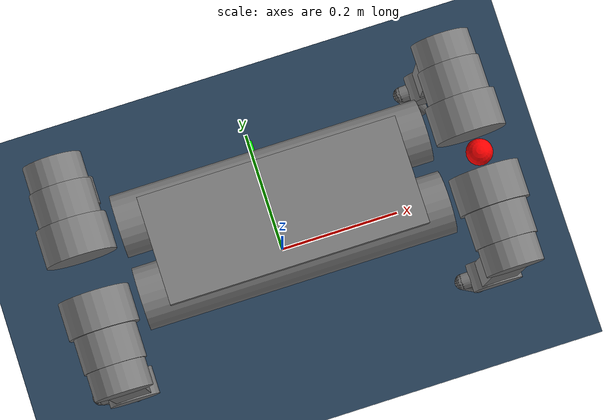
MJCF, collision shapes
<mujoco model="belt scene">
  <compiler angle="radian" meshdir="assets/"/>
  <option impratio="100" integrator="implicitfast" cone="elliptic"/>
  <size nkey="1"/>
  <visual>
    <global azimuth="-130" elevation="-20"/>
    <headlight ambient="0.3 0.3 0.3" diffuse="0.6 0.6 0.6" specular="0 0 0"/>
    <rgba haze="0.15 0.25 0.35 1"/>
  </visual>
  <statistic extent="0.8" center="0 0 0.1"/>
  <default class="main">
    <default class="belt">
      <joint actuatorfrcrange="-100 100" armature="0.0023" damping="2" frictionloss="0.2"/>
      <geom condim="1" friction="0.6" margin="0.001"/>
      <default class="abad">
        <joint range="-1.0472 1.0472" damping="1"/>
        <general ctrlrange="-45 45"/>
      </default>
      <default class="hip_right">
        <joint range="-3.14159 3.14159"/>
        <general ctrlrange="-45 45"/>
      </default>
      <default class="hip_left">
        <joint range="-3.14159 3.14159"/>
        <general ctrlrange="-45 45"/>
      </default>
      <default class="knee_right">
        <joint range="-2.89025 0"/>
        <general ctrlrange="-80 80" forcerange="-80 80"/>
      </default>
      <default class="knee_left">
        <joint range="-2.89025 0"/>
        <general ctrlrange="-80 80" forcerange="-80 80"/>
      </default>
      <default class="visual">
        <geom type="mesh" contype="0" conaffinity="0" group="2"/>
      </default>
      <default class="collision">
        <geom type="capsule" group="3"/>
        <default class="foot">
          <geom size="0.0224 0 0" type="sphere" condim="6" priority="1" friction="0.8 0.02 0.01" solimp="0.015 1 0.031"/>
        </default>
        <default class="hip_front_left1">
          <geom size="0.053 0.028 0" type="cylinder"/>
        </default>
        <default class="hip_front_left2">
          <geom size="0.047 0.0264 0" type="cylinder"/>
        </default>
        <default class="hip_front_left3">
          <geom size="0.044 0.022 0" type="cylinder"/>
        </default>
        <default class="hip_front_right1">
          <geom size="0.053 0.028 0" type="cylinder"/>
        </default>
        <default class="hip_front_right2">
          <geom size="0.047 0.0264 0" type="cylinder"/>
        </default>
        <default class="hip_front_right3">
          <geom size="0.044 0.022 0" type="cylinder"/>
        </default>
        <default class="hip_rear_left1">
          <geom size="0.053 0.028 0" type="cylinder"/>
        </default>
        <default class="hip_rear_left2">
          <geom size="0.047 0.0264 0" type="cylinder"/>
        </default>
        <default class="hip_rear_left3">
          <geom size="0.044 0.022 0" type="cylinder"/>
        </default>
        <default class="hip_rear_right1">
          <geom size="0.053 0.028 0" type="cylinder"/>
        </default>
        <default class="hip_rear_right2">
          <geom size="0.047 0.0264 0" type="cylinder"/>
        </default>
        <default class="hip_rear_right3">
          <geom size="0.044 0.022 0" type="cylinder"/>
        </default>
        <default class="thigh_1">
          <geom size="0.028 0.0195 0.13475" type="box"/>
        </default>
        <default class="thigh_2">
          <geom size="0.04 0.022 0" type="cylinder"/>
        </default>
        <default class="calf_1">
          <geom size="0.0125 0 0"/>
        </default>
        <default class="calf_2">
          <geom size="0.0125 0 0"/>
        </default>
      </default>
    </default>
  </default>
  <asset>
    <texture type="skybox" builtin="gradient" rgb1="0.3 0.5 0.7" rgb2="0 0 0" width="512" height="3072"/>
    <texture type="2d" name="groundplane" builtin="checker" mark="edge" rgb1="0.2 0.3 0.4" rgb2="0.1 0.2 0.3" markrgb="0.8 0.8 0.8" width="300" height="300"/>
    <material name="dark" rgba="0.1 0.1 0.1 1"/>
    <material name="groundplane" texture="groundplane" texuniform="true" texrepeat="5 5" reflectance="0.2"/>
    <mesh name="base_link" class="belt" file="base_link.STL"/>
    <mesh name="fl_abad_link" class="belt" file="fl_abad_link.STL"/>
    <mesh name="fl_hip_link" class="belt" file="fl_hip_link.STL"/>
    <mesh name="fl_knee_link" class="belt" file="fl_knee_link.STL"/>
    <mesh name="fr_abad_link" class="belt" file="fr_abad_link.STL"/>
    <mesh name="fr_hip_link" class="belt" file="fr_hip_link.STL"/>
    <mesh name="fr_knee_link" class="belt" file="fr_knee_link.STL"/>
    <mesh name="rl_abad_link" class="belt" file="rl_abad_link.STL"/>
    <mesh name="rl_hip_link" class="belt" file="rl_hip_link.STL"/>
    <mesh name="rl_knee_link" class="belt" file="rl_knee_link.STL"/>
    <mesh name="rr_abad_link" class="belt" file="rr_abad_link.STL"/>
    <mesh name="rr_hip_link" class="belt" file="rr_hip_link.STL"/>
    <mesh name="rr_knee_link" class="belt" file="rr_knee_link.STL"/>
  </asset>
  <worldbody>
    <geom name="floor" size="0 0 0.05" type="plane" material="groundplane"/>
    <light name="spotlight" target="base" pos="0 -1 2" dir="0 0 -1" mode="targetbodycom"/>
    <light pos="0 0 1.5" dir="0 0 -1" directional="true"/>
    <body name="base" childclass="belt" pos="0 0 0.5">
      <inertial pos="0 0 -0.00069" mass="10.3299" diaginertia="0.04311 0.19241 0.21611"/>
      <joint type="free" limited="false" actuatorfrclimited="false" actuatorfrcrange="0 0" armature="0" damping="0" frictionloss="0"/>
      <geom class="visual" rgba="0.847059 0.643137 0.498039 1" mesh="base_link"/>
      <geom class="collision" size="0.194 0.0808 0.056" type="box"/>
      <geom class="collision" size="0.04695 0.2322" pos="0 0.055 0" quat="0.707107 0 0.707107 0" type="cylinder"/>
      <geom class="collision" size="0.04695 0.2322" pos="0 -0.055 0" quat="0.707107 0 0.707107 0" type="cylinder"/>
      <site name="head" pos="0.3 0 0" size="0.02" rgba="1 0 0 1"/>
      <site name="imu" pos="0 0 0"/>
      <camera name="tracking" pos="0 -1 0.8" quat="0.92388 0.382683 0 0" mode="trackcom"/>
      <body name="fr_abad" pos="0.241 -0.055 0">
        <inertial pos="0.052428 -0.025819 7.2618e-08" quat="0.453148 0.54283 -0.453135 0.542827" mass="1.9747" diaginertia="0.0032013 0.00310579 0.00221631"/>
        <joint name="fr_abad_joint" class="abad" pos="0 0 0" axis="1 0 0"/>
        <geom class="visual" rgba="0.152941 0.160784 0.196078 1" mesh="fr_abad_link"/>
        <geom class="hip_front_right1" pos="0.0555 0 0" quat="0.707107 0.707107 0 0"/>
        <geom class="hip_front_right2" pos="0.0555 -0.05455 0" quat="0.707107 0.707107 0 0"/>
        <geom class="hip_front_right3" pos="0.0555 -0.10045 0" quat="0.707107 0.707107 0 0"/>
        <body name="fr_hip" pos="0.0554994 -0.10045 0">
          <inertial pos="-4.7268e-06 -0.0035029 -0.11665" quat="0.707131 0.00128766 -0.0013139 0.70708" mass="1.0489" diaginertia="0.0125462 0.012351 0.000606138"/>
          <joint name="fr_hip_joint" class="hip_right" pos="0 0 0" axis="0 1 0"/>
          <geom class="visual" rgba="0.905882 0.92549 0.937255 1" mesh="fr_hip_link"/>
          <geom class="thigh_1" pos="0 0 -0.13475"/>
          <geom class="thigh_2" pos="0 0 -0.2695" quat="0.707107 0.707107 0 0"/>
          <body name="fr_knee" pos="0 0 -0.2695">
            <inertial pos="-0.0112576 -3.13499e-08 -0.0631957" quat="0.70698 -0.0132108 -0.0132119 0.706987" mass="0.391062" diaginertia="0.00383396 0.00366268 0.000225956"/>
            <joint name="fr_knee_joint" class="knee_right" pos="0 0 0" axis="0 1 0"/>
            <geom class="visual" rgba="0.0588235 0.443137 0.45098 1" mesh="fr_knee_link"/>
            <geom class="calf_1" size="0.0125 0.0260022" pos="-0.02523 0 -0.00629" quat="0.788004 0 0.615669 0"/>
            <geom class="calf_2" size="0.0125 0.125039" pos="-0.02523 0 -0.135047" quat="0.994845 0 -0.101411 0"/>
            <geom name="fr_foot" class="foot" pos="0 0 -0.257515"/>
            <site name="fr_foot_site" pos="0 0 -0.257515" size="0.0224" rgba="0.941176 0.364706 0.368627 1"/>
          </body>
        </body>
      </body>
      <body name="fl_abad" pos="0.241 0.055 0">
        <inertial pos="0.052428 0.025819 -7.2618e-08" quat="0.542827 0.453135 -0.54283 0.453148" mass="1.9747" diaginertia="0.0032013 0.00310579 0.00221631"/>
        <joint name="fl_abad_joint" class="abad" pos="0 0 0" axis="1 0 0"/>
        <geom class="visual" rgba="0.152941 0.160784 0.196078 1" mesh="fl_abad_link"/>
        <geom class="hip_front_left1" pos="0.0555 0 0" quat="0.707107 0.707107 0 0"/>
        <geom class="hip_front_left2" pos="0.0555 0.05455 0" quat="0.707107 0.707107 0 0"/>
        <geom class="hip_front_left3" pos="0.0555 0.10045 0" quat="0.707107 0.707107 0 0"/>
        <body name="fl_hip" pos="0.055499 0.10045 0">
          <inertial pos="4.7257e-06 0.0035029 -0.11665" quat="0.707131 -0.00128767 0.0013139 0.70708" mass="1.0489" diaginertia="0.0125462 0.012351 0.000606138"/>
          <joint name="fl_hip_joint" class="hip_left" pos="0 0 0" axis="0 1 0"/>
          <geom class="visual" rgba="0.905882 0.92549 0.937255 1" mesh="fl_hip_link"/>
          <geom class="thigh_1" pos="0 0 -0.13475"/>
          <geom class="thigh_2" pos="0 0 -0.2695" quat="0.707107 0.707107 0 0"/>
          <body name="fl_knee" pos="0 0 -0.2695">
            <inertial pos="-0.011258 -3.135e-08 -0.063196" quat="0.70698 -0.0132108 -0.0132119 0.706987" mass="0.39106" diaginertia="0.003834 0.0036627 0.000225953"/>
            <joint name="fl_knee_joint" class="knee_left" pos="0 0 0" axis="0 1 0"/>
            <geom class="visual" rgba="0.0588235 0.443137 0.45098 1" mesh="fl_knee_link"/>
            <geom class="calf_1" size="0.0125 0.0260022" pos="-0.02523 0 -0.00629" quat="0.788004 0 0.615669 0"/>
            <geom class="calf_2" size="0.0125 0.125039" pos="-0.02523 0 -0.135047" quat="0.994845 0 -0.101411 0"/>
            <geom name="fl_foot" class="foot" pos="0 0 -0.257515"/>
            <site name="fl_foot_site" pos="0 0 -0.257515" size="0.0224" rgba="0.941176 0.364706 0.368627 1"/>
          </body>
        </body>
      </body>
      <body name="rr_abad" pos="-0.241 -0.055 0">
        <inertial pos="-0.052428 -0.025819 -7.2618e-08" quat="0.54283 0.453148 -0.542827 0.453135" mass="1.9747" diaginertia="0.0032013 0.00310579 0.00221631"/>
        <joint name="rr_abad_joint" class="abad" pos="0 0 0" axis="1 0 0"/>
        <geom class="visual" rgba="0.152941 0.160784 0.196078 1" mesh="rr_abad_link"/>
        <geom class="hip_rear_right1" pos="-0.0555 0 0" quat="0.707107 0.707107 0 0"/>
        <geom class="hip_rear_right2" pos="-0.0555 -0.05455 0" quat="0.707107 0.707107 0 0"/>
        <geom class="hip_rear_right3" pos="-0.0555 -0.10045 0" quat="0.707107 0.707107 0 0"/>
        <body name="rr_hip" pos="-0.055499 -0.10045 0">
          <inertial pos="-4.72682e-06 -0.0035029 -0.116651" quat="0.707131 0.00128766 -0.0013139 0.70708" mass="1.0489" diaginertia="0.0125463 0.0123505 0.000606143"/>
          <joint name="rr_hip_joint" class="hip_right" pos="0 0 0" axis="0 1 0"/>
          <geom class="visual" rgba="0.905882 0.92549 0.937255 1" mesh="rr_hip_link"/>
          <geom class="thigh_1" pos="0 0 -0.13475"/>
          <geom class="thigh_2" pos="0 0 -0.2695" quat="0.707107 0.707107 0 0"/>
          <body name="rr_knee" pos="0 0 -0.2695">
            <inertial pos="-0.011258 -3.135e-08 -0.063196" quat="0.70698 -0.0132108 -0.0132119 0.706987" mass="0.39106" diaginertia="0.003834 0.0036627 0.000225953"/>
            <joint name="rr_knee_joint" class="knee_right" pos="0 0 0" axis="0 1 0"/>
            <geom class="visual" rgba="0.0588235 0.443137 0.45098 1" mesh="rr_knee_link"/>
            <geom class="calf_1" size="0.0125 0.0260022" pos="-0.02523 0 -0.00629" quat="0.788004 0 0.615669 0"/>
            <geom class="calf_2" size="0.0125 0.125039" pos="-0.02523 0 -0.135047" quat="0.994845 0 -0.101411 0"/>
            <geom name="rr_foot" class="foot" pos="0 0 -0.257515"/>
            <site name="rr_foot_site" pos="0 0 -0.257515" size="0.0224" rgba="0.941176 0.364706 0.368627 1"/>
          </body>
        </body>
      </body>
      <body name="rl_abad" pos="-0.241 0.055 0">
        <inertial pos="-0.052428 0.025819 7.2618e-08" quat="0.453135 0.542827 -0.453148 0.54283" mass="1.9747" diaginertia="0.0032013 0.00310579 0.00221631"/>
        <joint name="rl_abad_joint" class="abad" pos="0 0 0" axis="1 0 0"/>
        <geom class="visual" rgba="0.152941 0.160784 0.196078 1" mesh="rl_abad_link"/>
        <geom class="hip_rear_left1" pos="-0.0555 0 0" quat="0.707107 0.707107 0 0"/>
        <geom class="hip_rear_left2" pos="-0.0555 0.05455 0" quat="0.707107 0.707107 0 0"/>
        <geom class="hip_rear_left3" pos="-0.0555 0.10045 0" quat="0.707107 0.707107 0 0"/>
        <body name="rl_hip" pos="-0.055499 0.10045 0">
          <inertial pos="4.7257e-06 0.0035029 -0.11665" quat="0.707131 -0.00128767 0.0013139 0.70708" mass="1.0489" diaginertia="0.0125462 0.012351 0.000606138"/>
          <joint name="rl_hip_joint" class="hip_left" pos="0 0 0" axis="0 1 0"/>
          <geom class="visual" rgba="0.905882 0.92549 0.937255 1" mesh="rl_hip_link"/>
          <geom class="thigh_1" pos="0 0 -0.13475"/>
          <geom class="thigh_2" pos="0 0 -0.2695" quat="0.707107 0.707107 0 0"/>
          <body name="rl_knee" pos="0 0 -0.2695">
            <inertial pos="-0.011258 -3.135e-08 -0.063196" quat="0.70698 -0.0132108 -0.0132119 0.706987" mass="0.39106" diaginertia="0.003834 0.0036627 0.000225953"/>
            <joint name="rl_knee_joint" class="knee_left" pos="0 0 0" axis="0 1 0"/>
            <geom class="visual" rgba="0.0588235 0.443137 0.45098 1" mesh="rl_knee_link"/>
            <geom class="calf_1" size="0.0125 0.0260022" pos="-0.02523 0 -0.00629" quat="0.788004 0 0.615669 0"/>
            <geom class="calf_2" size="0.0125 0.125039" pos="-0.02523 0 -0.135047" quat="0.994845 0 -0.101411 0"/>
            <geom name="rl_foot" class="foot" pos="0 0 -0.257515"/>
            <site name="rl_foot_site" pos="0 0 -0.257515" size="0.0224" rgba="0.941176 0.364706 0.368627 1"/>
          </body>
        </body>
      </body>
    </body>
    <body name="esti_indicator" pos="0 0 0.1" mocap="true">
      <site name="mocap_left_site1" pos="0 0 0.075" size="0.003 0.003 0.1" type="box" rgba="0 0 1 1"/>
      <site name="mocap_left_site2" pos="0 0.075 0" size="0.003 0.1 0.003" type="box" rgba="0 1 0 1"/>
      <site name="mocap_left_site3" pos="0.075 0 0" size="0.1 0.003 0.003" type="box" rgba="1 0 0 1"/>
    </body>
  </worldbody>
  <actuator>
    <general name="FR_ABAD" class="abad" joint="fr_abad_joint"/>
    <general name="FR_HIP" class="hip_right" joint="fr_hip_joint"/>
    <general name="FR_KNEE" class="knee_right" joint="fr_knee_joint"/>
    <general name="FL_ABAD" class="abad" joint="fl_abad_joint"/>
    <general name="FL_HIP" class="hip_left" joint="fl_hip_joint"/>
    <general name="FL_KNEE" class="knee_left" joint="fl_knee_joint"/>
    <general name="RR_ABAD" class="abad" joint="rr_abad_joint"/>
    <general name="RR_HIP" class="hip_right" joint="rr_hip_joint"/>
    <general name="RR_KNEE" class="knee_right" joint="rr_knee_joint"/>
    <general name="RL_ABAD" class="abad" joint="rl_abad_joint"/>
    <general name="RL_HIP" class="hip_left" joint="rl_hip_joint"/>
    <general name="RL_KNEE" class="knee_left" joint="rl_knee_joint"/>
  </actuator>
  <sensor>
    <gyro site="imu" name="body_gyro"/>
    <framequat objtype="site" objname="imu" name="body_quat"/>
    <accelerometer site="imu" name="body_acc"/>
  </sensor>
  <keyframe>
    <key name="home" qpos="0 0 0.41 1 0 0 0 0 0.7086 -1.4172 0 0.7086 -1.4172 0 0.7086 -1.4172 0 0.7086 -1.4172"/>
  </keyframe>
</mujoco>
